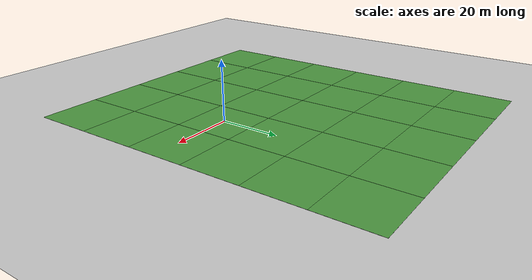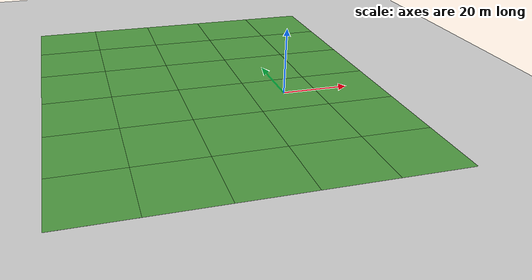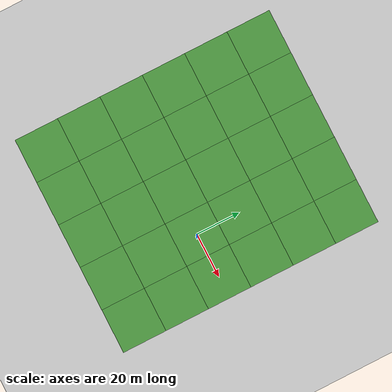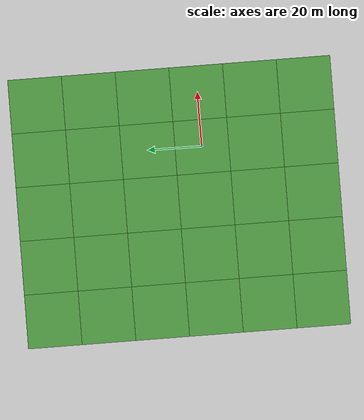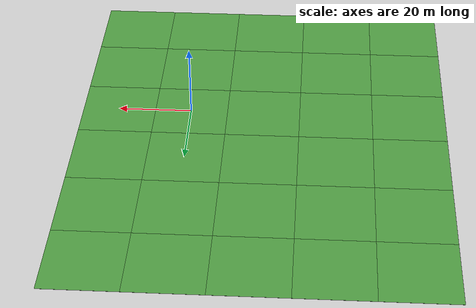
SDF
<sdf version="1.5">
 <world name="park">
  <scene>
   <ambient>0.5 0.5 0.5 1</ambient>
   <background>0.5 0.5 0.5 1</background>
   <shadows>true</shadows>
   <sky><clouds><speed>2</speed><mean_size>0.1</mean_size></clouds><time>12</time></sky>
   <grid>false</grid>
  </scene>
  <physics type="ode">
   <gravity>0 0 -9.81</gravity>
   <ode>
    <solver><type>quick</type><iters>10</iters><sor>1.3</sor></solver>
    <constraints>
     <cfm>0.0</cfm>
     <erp>0.2</erp>
     <contact_max_correcting_vel>10</contact_max_correcting_vel>
     <contact_surface_layer>0.001</contact_surface_layer>
    </constraints>
   </ode>
   <max_step_size>0.001</max_step_size>
  </physics>
  <light type="directional" name="directional_light_1">
   <pose>0 20 20 0.1 0.1 0</pose>
   <diffuse>1 1 1 1</diffuse>
   <specular>1 1 1 1</specular>
   <attenuation><range>300</range></attenuation>
   <direction>0.1 0.1 -1</direction>
   <cast_shadows>false</cast_shadows>
  </light>
  <include><uri>model://grass_plane</uri></include>
  <model name="asphalt_road_1">
   <include><uri>model://asphalt_plane</uri></include>
   <pose>40 60 0 0 0 0</pose>
  </model>
  <model name="asphalt_road_2">
   <include><uri>model://asphalt_plane</uri></include>
   <pose>40 40 0 0 0 0</pose>
  </model>
  <model name="asphalt_road_3">
   <include><uri>model://asphalt_plane</uri></include>
   <pose>40 20 0 0 0 0</pose>
  </model>
  <model name="asphalt_road_4">
   <include><uri>model://asphalt_plane</uri></include>
   <pose>40 0 0 0 0 0</pose>
  </model>
  <model name="asphalt_road_5">
   <include><uri>model://asphalt_plane</uri></include>
   <pose>40 -20 0 0 0 0</pose>
  </model>
  <model name="asphalt_road_6">
   <include><uri>model://asphalt_plane</uri></include>
   <pose>40 -40 0 0 0 0</pose>
  </model>
 </world>
</sdf>

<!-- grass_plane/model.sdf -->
<sdf version="1.5">
<model name="grass_plane">
  <static>true</static>
    <link name="link">
      <collision name="collision">
        <geometry>
          <plane>
            <normal>0 0 1</normal>
            <size>200 200</size>
          </plane>
        </geometry>
        <surface>
          <friction>
            <ode>
              <mu>100</mu>
              <mu2>50</mu2>
            </ode>
          </friction>
        </surface>
      </collision>

      <visual name="visual_(-3, -2)">
        <pose>-60 -40 0 0 0 0</pose>
        <cast_shadows>false</cast_shadows>
        <geometry>
          <plane>
            <normal>0 0 1</normal>
            <size>20 20</size>
          </plane>
        </geometry>
        <material>
          <script>
            <uri>model://grass_plane/materials/scripts/</uri>
            <uri>model://grass_plane/materials/textures/</uri>
            <name>grass_dry</name>
          </script>
        </material>
      </visual>

      <visual name="visual_(-3, -1)">
        <pose>-60 -20 0 0 0 0</pose>
        <cast_shadows>false</cast_shadows>
        <geometry>
          <plane>
            <normal>0 0 1</normal>
            <size>20 20</size>
          </plane>
        </geometry>
        <material>
          <script>
            <uri>model://grass_plane/materials/scripts/</uri>
            <uri>model://grass_plane/materials/textures/</uri>
            <name>grass_dry</name>
          </script>
        </material>
      </visual>

      <visual name="visual_(-3, 0)">
        <pose>-60 0 0 0 0 0</pose>
        <cast_shadows>false</cast_shadows>
        <geometry>
          <plane>
            <normal>0 0 1</normal>
            <size>20 20</size>
          </plane>
        </geometry>
        <material>
          <script>
            <uri>model://grass_plane/materials/scripts/</uri>
            <uri>model://grass_plane/materials/textures/</uri>
            <name>grass_dry</name>
          </script>
        </material>
      </visual>

      <visual name="visual_(-3, 1)">
        <pose>-60 20 0 0 0 0</pose>
        <cast_shadows>false</cast_shadows>
        <geometry>
          <plane>
            <normal>0 0 1</normal>
            <size>20 20</size>
          </plane>
        </geometry>
        <material>
          <script>
            <uri>model://grass_plane/materials/scripts/</uri>
            <uri>model://grass_plane/materials/textures/</uri>
            <name>grass_dry</name>
          </script>
        </material>
      </visual>

      <visual name="visual_(-3, 2)">
        <pose>-60 40 0 0 0 0</pose>
        <cast_shadows>false</cast_shadows>
        <geometry>
          <plane>
            <normal>0 0 1</normal>
            <size>20 20</size>
          </plane>
        </geometry>
        <material>
          <script>
            <uri>model://grass_plane/materials/scripts/</uri>
            <uri>model://grass_plane/materials/textures/</uri>
            <name>grass_dry</name>
          </script>
        </material>
      </visual>

      <visual name="visual_(-3, 3)">
        <pose>-60 60 0 0 0 0</pose>
        <cast_shadows>false</cast_shadows>
        <geometry>
          <plane>
            <normal>0 0 1</normal>
            <size>20 20</size>
          </plane>
        </geometry>
        <material>
          <script>
            <uri>model://grass_plane/materials/scripts/</uri>
            <uri>model://grass_plane/materials/textures/</uri>
            <name>grass_dry</name>
          </script>
        </material>
      </visual>

      <visual name="visual_(-2, -2)">
        <pose>-40 -40 0 0 0 0</pose>
        <cast_shadows>false</cast_shadows>
        <geometry>
          <plane>
            <normal>0 0 1</normal>
            <size>20 20</size>
          </plane>
        </geometry>
        <material>
          <script>
            <uri>model://grass_plane/materials/scripts/</uri>
            <uri>model://grass_plane/materials/textures/</uri>
            <name>grass_dry</name>
          </script>
        </material>
      </visual>

      <visual name="visual_(-2, -1)">
        <pose>-40 -20 0 0 0 0</pose>
        <cast_shadows>false</cast_shadows>
        <geometry>
          <plane>
            <normal>0 0 1</normal>
            <size>20 20</size>
          </plane>
        </geometry>
        <material>
          <script>
            <uri>model://grass_plane/materials/scripts/</uri>
            <uri>model://grass_plane/materials/textures/</uri>
            <name>grass_dry</name>
          </script>
        </material>
      </visual>

      <visual name="visual_(-2, 0)">
        <pose>-40 0 0 0 0 0</pose>
        <cast_shadows>false</cast_shadows>
        <geometry>
          <plane>
            <normal>0 0 1</normal>
            <size>20 20</size>
          </plane>
        </geometry>
        <material>
          <script>
            <uri>model://grass_plane/materials/scripts/</uri>
            <uri>model://grass_plane/materials/textures/</uri>
            <name>grass_dry</name>
          </script>
        </material>
      </visual>

      <visual name="visual_(-2, 1)">
        <pose>-40 20 0 0 0 0</pose>
        <cast_shadows>false</cast_shadows>
        <geometry>
          <plane>
            <normal>0 0 1</normal>
            <size>20 20</size>
          </plane>
        </geometry>
        <material>
          <script>
            <uri>model://grass_plane/materials/scripts/</uri>
            <uri>model://grass_plane/materials/textures/</uri>
            <name>grass_dry</name>
          </script>
        </material>
      </visual>

      <visual name="visual_(-2, 2)">
        <pose>-40 40 0 0 0 0</pose>
        <cast_shadows>false</cast_shadows>
        <geometry>
          <plane>
            <normal>0 0 1</normal>
            <size>20 20</size>
          </plane>
        </geometry>
        <material>
          <script>
            <uri>model://grass_plane/materials/scripts/</uri>
            <uri>model://grass_plane/materials/textures/</uri>
            <name>grass_dry</name>
          </script>
        </material>
      </visual>

      <visual name="visual_(-2, 3)">
        <pose>-40 60 0 0 0 0</pose>
        <cast_shadows>false</cast_shadows>
        <geometry>
          <plane>
            <normal>0 0 1</normal>
            <size>20 20</size>
          </plane>
        </geometry>
        <material>
          <script>
            <uri>model://grass_plane/materials/scripts/</uri>
            <uri>model://grass_plane/materials/textures/</uri>
            <name>grass_dry</name>
          </script>
        </material>
      </visual>

      <visual name="visual_(-1, -2)">
        <pose>-20 -40 0 0 0 0</pose>
        <cast_shadows>false</cast_shadows>
        <geometry>
          <plane>
            <normal>0 0 1</normal>
            <size>20 20</size>
          </plane>
        </geometry>
        <material>
          <script>
            <uri>model://grass_plane/materials/scripts/</uri>
            <uri>model://grass_plane/materials/textures/</uri>
            <name>grass_dry</name>
          </script>
        </material>
      </visual>

      <visual name="visual_(-1, -1)">
        <pose>-20 -20 0 0 0 0</pose>
        <cast_shadows>false</cast_shadows>
        <geometry>
          <plane>
            <normal>0 0 1</normal>
            <size>20 20</size>
          </plane>
        </geometry>
        <material>
          <script>
            <uri>model://grass_plane/materials/scripts/</uri>
            <uri>model://grass_plane/materials/textures/</uri>
            <name>grass_dry</name>
          </script>
        </material>
      </visual>

      <visual name="visual_(-1, 0)">
        <pose>-20 0 0 0 0 0</pose>
        <cast_shadows>false</cast_shadows>
        <geometry>
          <plane>
            <normal>0 0 1</normal>
            <size>20 20</size>
          </plane>
        </geometry>
        <material>
          <script>
            <uri>model://grass_plane/materials/scripts/</uri>
            <uri>model://grass_plane/materials/textures/</uri>
            <name>grass_dry</name>
          </script>
        </material>
      </visual>

      <visual name="visual_(-1, 1)">
        <pose>-20 20 0 0 0 0</pose>
        <cast_shadows>false</cast_shadows>
        <geometry>
          <plane>
            <normal>0 0 1</normal>
            <size>20 20</size>
          </plane>
        </geometry>
        <material>
          <script>
            <uri>model://grass_plane/materials/scripts/</uri>
            <uri>model://grass_plane/materials/textures/</uri>
            <name>grass_dry</name>
          </script>
        </material>
      </visual>

      <visual name="visual_(-1, 2)">
        <pose>-20 40 0 0 0 0</pose>
        <cast_shadows>false</cast_shadows>
        <geometry>
          <plane>
            <normal>0 0 1</normal>
            <size>20 20</size>
          </plane>
        </geometry>
        <material>
          <script>
            <uri>model://grass_plane/materials/scripts/</uri>
            <uri>model://grass_plane/materials/textures/</uri>
            <name>grass_dry</name>
          </script>
        </material>
      </visual>

      <visual name="visual_(-1, 3)">
        <pose>-20 60 0 0 0 0</pose>
        <cast_shadows>false</cast_shadows>
        <geometry>
          <plane>
            <normal>0 0 1</normal>
            <size>20 20</size>
          </plane>
        </geometry>
        <material>
          <script>
            <uri>model://grass_plane/materials/scripts/</uri>
            <uri>model://grass_plane/materials/textures/</uri>
            <name>grass_dry</name>
          </script>
        </material>
      </visual>

      <visual name="visual_(0, -2)">
        <pose>0 -40 0 0 0 0</pose>
        <cast_shadows>false</cast_shadows>
        <geometry>
          <plane>
            <normal>0 0 1</normal>
            <size>20 20</size>
          </plane>
        </geometry>
        <material>
          <script>
            <uri>model://grass_plane/materials/scripts/</uri>
            <uri>model://grass_plane/materials/textures/</uri>
            <name>grass_dry</name>
          </script>
        </material>
      </visual>

      <visual name="visual_(0, -1)">
        <pose>0 -20 0 0 0 0</pose>
        <cast_shadows>false</cast_shadows>
        <geometry>
          <plane>
            <normal>0 0 1</normal>
            <size>20 20</size>
          </plane>
        </geometry>
        <material>
          <script>
            <uri>model://grass_plane/materials/scripts/</uri>
            <uri>model://grass_plane/materials/textures/</uri>
            <name>grass_dry</name>
          </script>
        </material>
      </visual>

      <visual name="visual_(0, 0)">
        <pose>0 0 0 0 0 0</pose>
        <cast_shadows>false</cast_shadows>
        <geometry>
          <plane>
            <normal>0 0 1</normal>
            <size>20 20</size>
          </plane>
        </geometry>
        <material>
          <script>
            <uri>model://grass_plane/materials/scripts/</uri>
            <uri>model://grass_plane/materials/textures/</uri>
            <name>grass_dry</name>
          </script>
        </material>
      </visual>

      <visual name="visual_(0, 1)">
        <pose>0 20 0 0 0 0</pose>
        <cast_shadows>false</cast_shadows>
        <geometry>
          <plane>
            <normal>0 0 1</normal>
            <size>20 20</size>
          </plane>
        </geometry>
        <material>
          <script>
            <uri>model://grass_plane/materials/scripts/</uri>
            <uri>model://grass_plane/materials/textures/</uri>
            <name>grass_dry</name>
          </script>
        </material>
      </visual>

      <visual name="visual_(0, 2)">
        <pose>0 40 0 0 0 0</pose>
        <cast_shadows>false</cast_shadows>
        <geometry>
          <plane>
            <normal>0 0 1</normal>
            <size>20 20</size>
          </plane>
        </geometry>
        <material>
          <script>
            <uri>model://grass_plane/materials/scripts/</uri>
            <uri>model://grass_plane/materials/textures/</uri>
            <name>grass_dry</name>
          </script>
        </material>
      </visual>

      <visual name="visual_(0, 3)">
        <pose>0 60 0 0 0 0</pose>
        <cast_shadows>false</cast_shadows>
        <geometry>
          <plane>
            <normal>0 0 1</normal>
            <size>20 20</size>
          </plane>
        </geometry>
        <material>
          <script>
            <uri>model://grass_plane/materials/scripts/</uri>
            <uri>model://grass_plane/materials/textures/</uri>
            <name>grass_dry</name>
          </script>
        </material>
      </visual>

      <visual name="visual_(1, -2)">
        <pose>20 -40 0 0 0 0</pose>
        <cast_shadows>false</cast_shadows>
        <geometry>
          <plane>
            <normal>0 0 1</normal>
            <size>20 20</size>
          </plane>
        </geometry>
        <material>
          <script>
            <uri>model://grass_plane/materials/scripts/</uri>
            <uri>model://grass_plane/materials/textures/</uri>
            <name>grass_dry</name>
          </script>
        </material>
      </visual>

      <visual name="visual_(1, -1)">
        <pose>20 -20 0 0 0 0</pose>
        <cast_shadows>false</cast_shadows>
        <geometry>
          <plane>
            <normal>0 0 1</normal>
            <size>20 20</size>
          </plane>
        </geometry>
        <material>
          <script>
            <uri>model://grass_plane/materials/scripts/</uri>
            <uri>model://grass_plane/materials/textures/</uri>
            <name>grass_dry</name>
          </script>
        </material>
      </visual>

      <visual name="visual_(1, 0)">
        <pose>20 0 0 0 0 0</pose>
        <cast_shadows>false</cast_shadows>
        <geometry>
          <plane>
            <normal>0 0 1</normal>
            <size>20 20</size>
          </plane>
        </geometry>
        <material>
          <script>
            <uri>model://grass_plane/materials/scripts/</uri>
            <uri>model://grass_plane/materials/textures/</uri>
            <name>grass_dry</name>
          </script>
        </material>
      </visual>

      <visual name="visual_(1, 1)">
        <pose>20 20 0 0 0 0</pose>
        <cast_shadows>false</cast_shadows>
        <geometry>
          <plane>
            <normal>0 0 1</normal>
            <size>20 20</size>
          </plane>
        </geometry>
        <material>
          <script>
            <uri>model://grass_plane/materials/scripts/</uri>
            <uri>model://grass_plane/materials/textures/</uri>
            <name>grass_dry</name>
          </script>
        </material>
      </visual>

      <visual name="visual_(1, 2)">
        <pose>20 40 0 0 0 0</pose>
        <cast_shadows>false</cast_shadows>
        <geometry>
          <plane>
            <normal>0 0 1</normal>
            <size>20 20</size>
          </plane>
        </geometry>
        <material>
          <script>
            <uri>model://grass_plane/materials/scripts/</uri>
            <uri>model://grass_plane/materials/textures/</uri>
            <name>grass_dry</name>
          </script>
        </material>
      </visual>

      <visual name="visual_(1, 3)">
        <pose>20 60 0 0 0 0</pose>
        <cast_shadows>false</cast_shadows>
        <geometry>
          <plane>
            <normal>0 0 1</normal>
            <size>20 20</size>
          </plane>
        </geometry>
        <material>
          <script>
            <uri>model://grass_plane/materials/scripts/</uri>
            <uri>model://grass_plane/materials/textures/</uri>
            <name>grass_dry</name>
          </script>
        </material>
      </visual>

    </link>
  </model>
</sdf>
